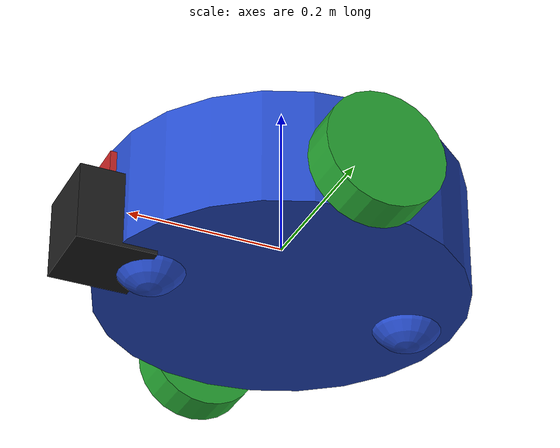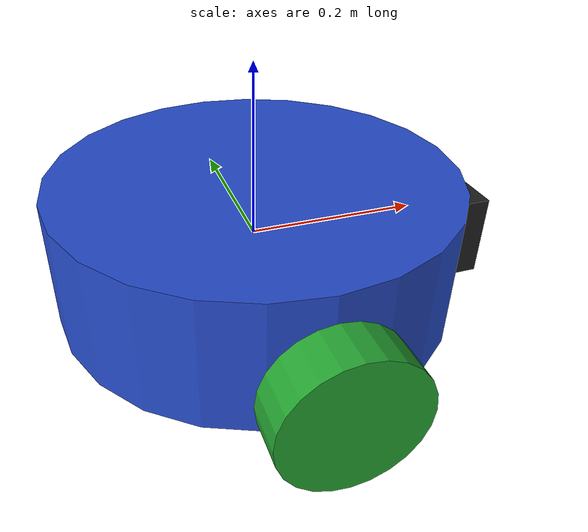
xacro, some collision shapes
<?xml version='1.0'?>

<robot name="my_robot" xmlns:xacro="http://www.ros.org/wiki/xacro">

<xacro:property name="wheel_radius" value="0.075" />
<xacro:property name="wheel_length" value="0.05" />
<xacro:property name="wheel_mass" value="5" />

<xacro:include filename="$(find my_robot)/urdf/my_robot.gazebo" />

 <link name="robot_footprint"></link>

  <joint name="robot_footprint_joint" type="fixed">
    <origin xyz="0 0 0" rpy="0 0 0" />
    <parent link="robot_footprint"/>
    <child link="chassis" />
  </joint>

  <link name='chassis'>
    <pose>0 0 0.05 0 0 0</pose>

    <inertial>
      <mass value="15.0"/>
      <origin xyz="0.0 0 0" rpy=" 0 0 0"/>
      <inertia
          ixx="0.1" ixy="0" ixz="0"
          iyy="0.1" iyz="0"
          izz="0.1"
      />
    </inertial>

    <collision name='collision'>
      <origin xyz="0 0 0" rpy=" 0 0 0"/>
      <geometry>
        <cylinder length="0.15" radius="0.23"/>
      </geometry>
    </collision>

    <visual name='chassis_visual'>
      <origin xyz="0 0 0" rpy=" 0 0 0"/>
      <geometry>
        <cylinder length="0.15" radius="0.23"/>
      </geometry>
    </visual>

    <collision name='back_caster_collision'>
      <origin xyz="-0.17 0 -0.05" rpy=" 0 0 0"/>
      <geometry>
        <sphere radius="0.05"/>
      </geometry>
    </collision>

    <visual name='back_caster_visual'>
      <origin xyz="-0.17 0 -0.05" rpy=" 0 0 0"/>
      <geometry>
        <sphere radius="0.05"/>
      </geometry>
    </visual>

    <collision name='front_caster_collision'>
      <origin xyz="0.17 0 -0.05" rpy=" 0 0 0"/>
      <geometry>
        <sphere radius="0.05"/>
      </geometry>
    </collision>

    <visual name='front_caster_visual'>
      <origin xyz="0.17 0 -0.05" rpy=" 0 0 0"/>
      <geometry>
        <sphere radius="0.05"/>
      </geometry>
    </visual>
  </link>

	<gazebo reference="chassis">
		<material>Gazebo/Blue</material>
	</gazebo>

  <!--Links-->

  <!--Left wheel-->
  <link name="left_wheel">
    <inertial>
      <origin xyz="0 0 0" rpy="0 1.5707 1.5707"/>
      <mass value="${wheel_mass}"/>
      <inertia ixx="0.1" ixy="0" ixz="0" iyy="0.1" iyz="0" izz="0.1"/>
    </inertial>

    <visual name="left_wheel_visual">
      <origin xyz="0 0 0" rpy="0 1.5707 1.5707"/>
      <geometry>
        <cylinder length="${wheel_length}" radius="${wheel_radius}"/>
      </geometry>
    </visual>

    <collision name="left_wheel_collision">
      <origin xyz="0 0 0" rpy="0 1.5707 1.5707"/>
      <geometry>
        <cylinder length="${wheel_length}" radius="${wheel_radius}"/>
      </geometry>
    </collision>
  </link>

  <joint type="continuous" name="left_wheel_hinge">
    <origin xyz="0 0.26 -0.025" rpy="0 0 0"/>
    <child link="left_wheel"/>
    <parent link="chassis"/>
    <axis xyz="0 1 0" rpy="0 0 0"/>
    <limit effort="10000" velocity="1000"/>
    <dynamics damping="1.0" friction="1.0"/>
  </joint>

	<gazebo reference="left_wheel">
		<material>Gazebo/Green</material>
	</gazebo>

  <!--Right wheel-->
  <link name="right_wheel">
    <inertial>
      <origin xyz="0 0 0" rpy="0 1.5707 1.5707"/>
      <mass value="${wheel_mass}"/>
      <inertia ixx="0.1" ixy="0" ixz="0" iyy="0.1" iyz="0" izz="0.1"/>
    </inertial>

    <visual nme="right_wheel_visual">
      <origin xyz="0 0 0" rpy="0 1.5707 1.5707"/>
      <geometry>
        <cylinder length="${wheel_length}" radius="${wheel_radius}"/>
       </geometry>
    </visual>

    <collision name="right_wheel_collision">
      <origin xyz="0 0 0" rpy="0 1.5707 1.5707"/>
      <geometry>
        <cylinder length="${wheel_length}" radius="${wheel_radius}"/>
      </geometry>
    </collision>
  </link>

  <joint type="continuous" name="right_wheel_hinge">
    <origin xyz="0 -0.26 -0.025" rpy="0 0 0"/>
    <child link="right_wheel"/>
    <parent link="chassis"/>
    <axis xyz="0 1 0" rpy="0 0 0"/>
    <limit effort="10000" velocity="1000"/>
    <dynamics damping="1.0" friction="1.0"/>
  </joint>

	<gazebo reference="right_wheel">
		<material>Gazebo/Green</material>
	</gazebo>

  <!--Camera-->
  <link name="camera">

    <inertial>
      <origin xyz="0 0 0" rpy="0 0 0"/>
	    <mass value="0.1"/>
      <geometry>
        <box size="0.05 0.05 0.05"/>
      </geometry>
      <inertia ixx="1e-6" ixy="0" ixz="0" iyy="1e-6" iyz="0" izz="1e-6"/>
    </inertial>

    <visual>
      <origin xyz="0 0 0" rpy="0 0 0"/>
      <geometry>
        <box size="0.05 0.05 0.05"/>
      </geometry>
    </visual>

    <collision>
      <origin xyz="0 0 0" rpy="0 0 0"/>
      <geometry>
        <box size="0.05 0.05 0.05"/>
      </geometry>
    </collision>

  </link>

  <joint type="fixed" name="camera_joint">
    <origin xyz="0.21 0 0.04" rpy="0 0 0"/>
    <parent link="chassis"/>
    <child link="camera"/>
    <axis xyz="0 1 0" rpy="0 0 0"/>
  </joint>

	<gazebo reference="camera">
		<material>Gazebo/Red</material>
	</gazebo>

  <link name="camera_link_optical">
  </link>

  <joint name="camera_optical_joint" type="fixed">
    <origin xyz="0 0 0" rpy="-1.5707 0 -1.5707"/>
    <parent link="camera"/>
    <child link="camera_link_optical"/>
  </joint>

  <!--Lidar-->
  <link name="hokuyo">

    <inertial>
      <origin xyz="0 0 0" rpy="0 0 0"/>
	    <mass value="1e-5"/>
      <geometry>
                <mesh filename="package://my_robot/meshes/hokuyo.dae"/>
      </geometry>
      <inertia ixx="1e-6" ixy="0" ixz="0" iyy="1e-6" iyz="0" izz="1e-6"/>
    </inertial>

    <visual>
      <origin xyz="0 0 0" rpy="0 0 0"/>
      <geometry>
        <mesh filename="package://my_robot/meshes/hokuyo.dae"/>
      </geometry>
    </visual>

    <collision>
      <origin xyz="0 0 0" rpy="0 0 0"/>
      <geometry>
        <box size="0.1 0.1 0.1"/>
      </geometry>
    </collision>
  </link>

  <joint type="fixed" name="hokuyo_joint">
    <origin xyz="0.23 0 -0.03" rpy="0 0 0"/>
    <parent link="chassis"/>
    <child link="hokuyo"/>
    <axis xyz="0 1 0" rpy="0 0 0"/>
  </joint>

  <gazebo reference="hokuyo">
		<material>Gazebo/Black</material>
	</gazebo>

</robot>
